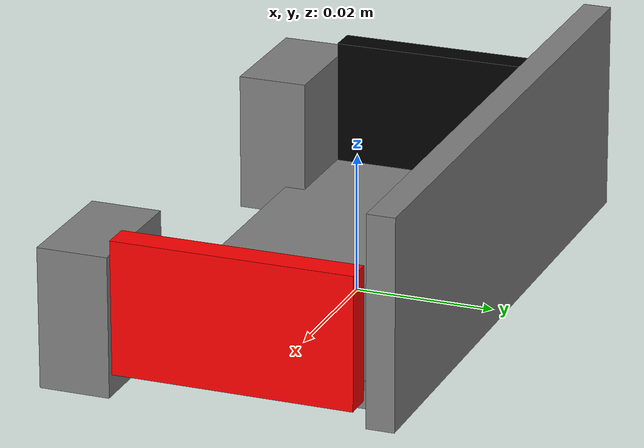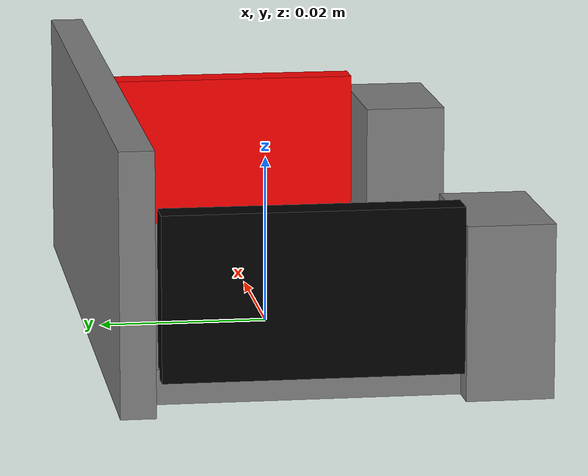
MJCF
<mujoco model="D_charger">
    <worldbody>
        <body name="charger_D" pos="0 0 0">

            <!-- Back wall -->
            <geom name="back_wall" type="box" pos="0 0.02 0.015" size="0.044 0.002 0.015"
                  rgba="0.5 0.5 0.5 1" density="1200" friction="1 0.005 0.0001" condim="4"/>
            <!-- Color: Light gray -->

            <!-- Bottom -->
            <geom name="bottom" type="box" pos="0 0 0.002" size="0.038 0.02 0.002" rgba=" 0.5 0.5 0.5 1" density="1200" friction="1 0.005 0.0001" condim="4"/>
            <!-- Bottom right -->

            <!-- Right wall -->
            <geom name="right_wall" type="box" pos="0.044 0 0.0125" size="0.002 0.017 0.0095" density="1200"
                  rgba="1 0 0 1" friction="1 0.005 0.0001" condim="4"/>
            <!-- Color: Red -->

            <!-- Right hook -->
            <geom name="right_hook" type="box" pos="0.038 -0.022 0.01" size="0.009 0.005 0.01" density="1200"
                  rgba="0.5 0.5 0.5 1" friction="1 0.005 0.0001" condim="4"/>
            <!-- Color: Light gray -->

            <!-- Bottom left -->

            <!-- Left wall -->
            <geom name="left_wall" type="box" pos="-0.0385 0 0.0125" size="0.002 0.017 0.0095" density="1200"
                  rgba="0 0 0 1" friction="1 0.005 0.0001" condim="4"/>
            <!-- Color: Black -->

            <!-- Left hook -->
            <geom name="left_hook" type="box" pos="-0.0325 -0.022 0.01" size="0.009 0.005 0.01" density="1200"
                  rgba="0.5 0.5 0.5 1" friction="1 0.005 0.0001" condim="4"/>
            <!-- Color: Light gray -->

            <!-- Make it one solid object -->
        </body>
    </worldbody>
</mujoco>
